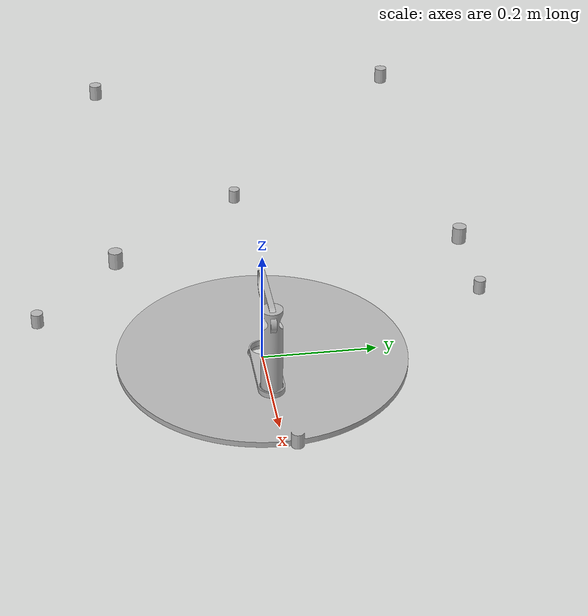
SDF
<?xml version="1.0" ?>
<sdf version="1.6">
	<model name="robot_arm_3dof">
		<link name="base">
			<self_collide>false</self_collide>
			<pose frame="">0.0 0.0 0.0 0.0 -0.0 0.0</pose>
			<inertial>
				<pose frame="">0.0 0.0 0.0 0 0 0</pose>
				<mass>1000</mass>
				<inertia>
					<ixx>0.1</ixx>
					<ixy>0.0</ixy>
					<ixz>0.0</ixz>
					<iyy>0.1</iyy>
					<iyz>0.0</iyz>
					<izz>0.1</izz>
				</inertia>
			</inertial>
			<collision name="base_collision">
				<geometry>
					<mesh>
						<uri>model://robot_arm_3dof/meshes/CAD/base.stl</uri>
						<scale>0.001 0.001 0.001</scale>
					</mesh>
				</geometry>
			</collision>
			<visual name="base_visual">
				<geometry>
					<mesh>
						<uri>model://robot_arm_3dof/meshes/CAD/base.stl</uri>
						<scale>0.001 0.001 0.001</scale>
					</mesh>
				</geometry>
			</visual>
		</link>
		<link name="link0">
			<self_collide>false</self_collide>
			<pose frame="">0.055 -1.019764304863026e-18 0.015 0.0 -0.0 0.0</pose>
			<inertial>
				<pose frame="">0.0 0.0 0.0 0 0 0</pose>
				<mass>0.1</mass>
				<inertia>
					<ixx>0.1</ixx>
					<ixy>0.0</ixy>
					<ixz>0.0</ixz>
					<iyy>0.1</iyy>
					<iyz>0.0</iyz>
					<izz>0.1</izz>
				</inertia>
			</inertial>
			<collision name="link0_collision">
				<geometry>
					<mesh>
						<uri>model://robot_arm_3dof/meshes/CAD/link0.stl</uri>
						<scale>0.001 0.001 0.001</scale>
					</mesh>
				</geometry>
			</collision>
			<visual name="link0_visual">
				<geometry>
					<mesh>
						<uri>model://robot_arm_3dof/meshes/CAD/link0.stl</uri>
						<scale>0.001 0.001 0.001</scale>
					</mesh>
				</geometry>
			</visual>
		</link>
		<link name="link1">
			<self_collide>false</self_collide>
			<pose frame="">0.11172617288138614 -4.440892098500626e-18 0.095 0.0 -0.0 0.0</pose>
			<inertial>
				<pose frame="">0.0 0.0 0.0 0 0 0</pose>
				<mass>0.1</mass>
				<inertia>
					<ixx>0.1</ixx>
					<ixy>0.0</ixy>
					<ixz>0.0</ixz>
					<iyy>0.1</iyy>
					<iyz>0.0</iyz>
					<izz>0.1</izz>
				</inertia>
			</inertial>
			<collision name="link1_collision">
				<geometry>
					<mesh>
						<uri>model://robot_arm_3dof/meshes/CAD/link1.stl</uri>
						<scale>0.001 0.001 0.001</scale>
					</mesh>
				</geometry>
			</collision>
			<visual name="link1_visual">
				<geometry>
					<mesh>
						<uri>model://robot_arm_3dof/meshes/CAD/link1.stl</uri>
						<scale>0.001 0.001 0.001</scale>
					</mesh>
				</geometry>
			</visual>
		</link>
		<link name="link2">
			<self_collide>false</self_collide>
			<pose frame="">0.055 0.0 0.1498438980346547 0.0 -0.0 0.0</pose>
			<inertial>
				<pose frame="">0.0 0.0 0.0 0 0 0</pose>
				<mass>0.1</mass>
				<inertia>
					<ixx>0.1</ixx>
					<ixy>0.0</ixy>
					<ixz>0.0</ixz>
					<iyy>0.1</iyy>
					<iyz>0.0</iyz>
					<izz>0.1</izz>
				</inertia>
			</inertial>
			<collision name="link2_collision">
				<geometry>
					<mesh>
						<uri>model://robot_arm_3dof/meshes/CAD/link2.stl</uri>
						<scale>0.001 0.001 0.001</scale>
					</mesh>
				</geometry>
			</collision>
			<visual name="link2_visual">
				<geometry>
					<mesh>
						<uri>model://robot_arm_3dof/meshes/CAD/link2.stl</uri>
						<scale>0.001 0.001 0.001</scale>
					</mesh>
				</geometry>
			</visual>
		</link>
		<joint name="joint2" type="revolute">
			<parent>link1</parent>
			<child>link2</child>
			<pose frame="">0.05672617288138614 0.0 0.0 0 0 0</pose>
			<axis>
				<xyz>0.0 1.0 0.0</xyz>
				<limit>
					<lower>-3.141592653589793</lower>
					<upper>3.141592653589793</upper>
				</limit>
				<use_parent_model_frame>0</use_parent_model_frame>
			</axis>
		</joint>
		<joint name="joint0" type="revolute">
			<parent>base</parent>
			<child>link0</child>
			<pose frame="">-0.055 1.019764304863026e-18 -0.005 0 0 0</pose>
			<axis>
				<xyz>0.0 0.0 -1.0</xyz>
				<limit>
					<lower>-3.141592653589793</lower>
					<upper>3.141592653589793</upper>
				</limit>
				<use_parent_model_frame>0</use_parent_model_frame>
			</axis>
		</joint>
		<joint name="joint1" type="revolute">
			<parent>link0</parent>
			<child>link1</child>
			<pose frame="">0.0 0.0 -0.075 0 0 0</pose>
			<axis>
				<xyz>0.0 0.0 -1.0</xyz>
				<limit>
					<lower>-3.141592653589793</lower>
					<upper>3.141592653589793</upper>
				</limit>
				<use_parent_model_frame>0</use_parent_model_frame>
			</axis>
		</joint>
		<plugin filename="libmusc_plugin.so" name="musc_plugin">
			<myoMuscle name="motor0">
				<link name="base">
					<viaPoint type="FIXPOINT">4.4326033149636727e-17 -0.37546511558028123 0.125</viaPoint>
				</link>
				<link name="link0">
					<viaPoint type="FIXPOINT">0.05672617288138614 -3.4211277936376003e-18 0.005</viaPoint>
				</link>
			</myoMuscle>
			<myoMuscle name="motor1">
				<link name="base">
					<viaPoint type="FIXPOINT">-0.37546511558028123 0.0 0.125</viaPoint>
				</link>
				<link name="link1">
					<viaPoint type="FIXPOINT">0.018262557862645627 2.2365183030732293e-18 0.075</viaPoint>
				</link>
			</myoMuscle>
			<myoMuscle name="motor2">
				<link name="base">
					<viaPoint type="FIXPOINT">-4.930380657631324e-34 0.37546511558028123 0.125</viaPoint>
				</link>
				<link name="link0">
					<viaPoint type="FIXPOINT">0.05672617288138614 -3.4211277936376003e-18 0.005</viaPoint>
				</link>
			</myoMuscle>
			<myoMuscle name="motor3">
				<link name="base">
					<viaPoint type="FIXPOINT">0.37546511558028123 0.0 0.125</viaPoint>
				</link>
				<link name="link1">
					<viaPoint type="FIXPOINT">-0.018262557862645627 4.440892098500626e-18 0.075</viaPoint>
				</link>
			</myoMuscle>
			<myoMuscle name="motor4">
				<link name="base">
					<viaPoint type="FIXPOINT">-0.28013220632000513 -0.25 0.4</viaPoint>
				</link>
				<link name="link2">
					<viaPoint type="FIXPOINT">-0.055 -0.005 0.0</viaPoint>
				</link>
			</myoMuscle>
			<myoMuscle name="motor5">
				<link name="base">
					<viaPoint type="FIXPOINT">0.28013220632000513 0.25000000000000006 0.4</viaPoint>
				</link>
				<link name="link2">
					<viaPoint type="FIXPOINT">-0.055 -0.005 0.0</viaPoint>
				</link>
			</myoMuscle>
			<myoMuscle name="motor6">
				<link name="base">
					<viaPoint type="FIXPOINT">0.28013220632000513 -0.25 0.4</viaPoint>
				</link>
				<link name="link2">
					<viaPoint type="FIXPOINT">-0.055 -0.005 0.0</viaPoint>
				</link>
			</myoMuscle>
			<myoMuscle name="motor7">
				<link name="base">
					<viaPoint type="FIXPOINT">-0.28013220632000513 0.25000000000000006 0.4</viaPoint>
				</link>
				<link name="link2">
					<viaPoint type="FIXPOINT">-0.055 -0.005 0.0</viaPoint>
				</link>
			</myoMuscle>
			<endEffector link="link2" name="endeffector0">-0.055 0.005 0.0</endEffector>
		</plugin>
	</model>
</sdf>
